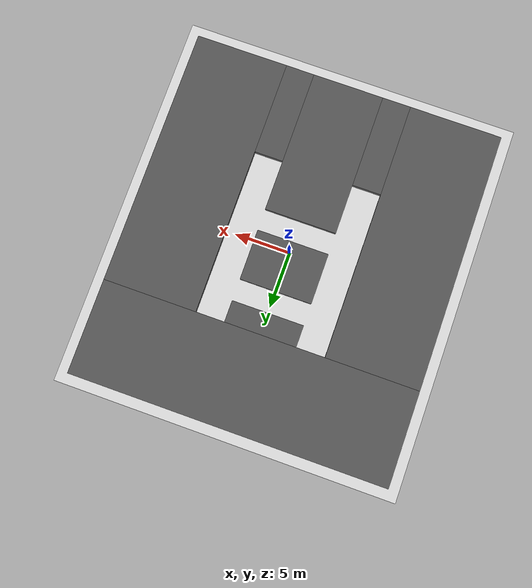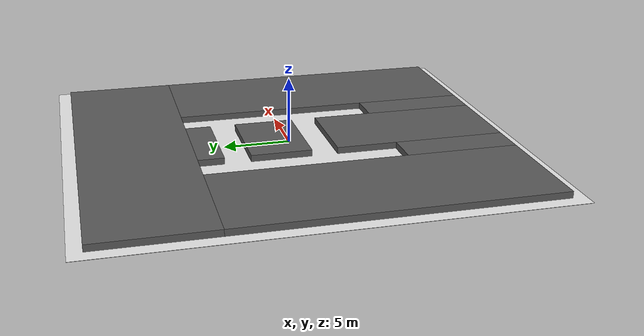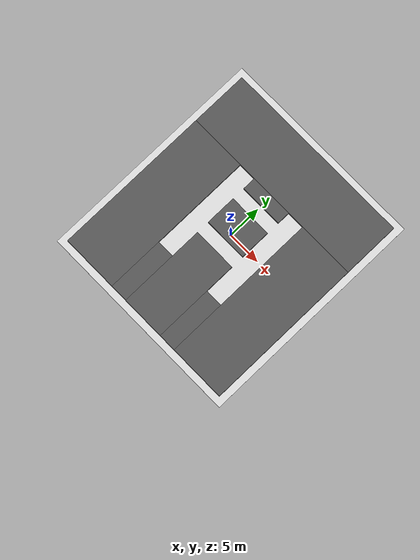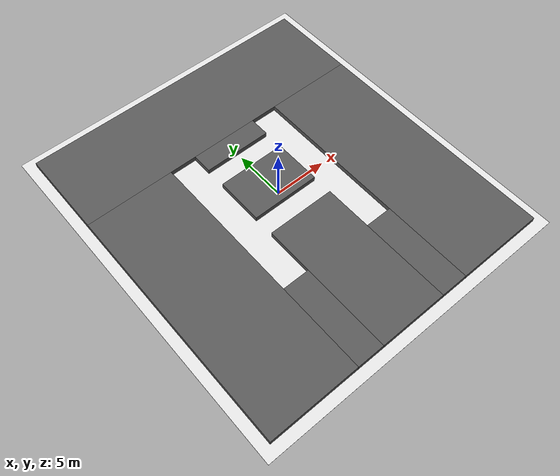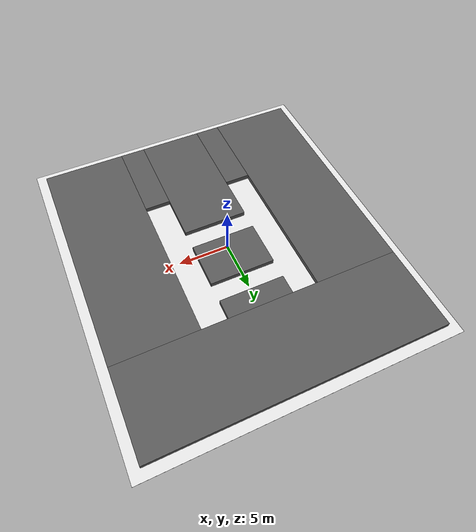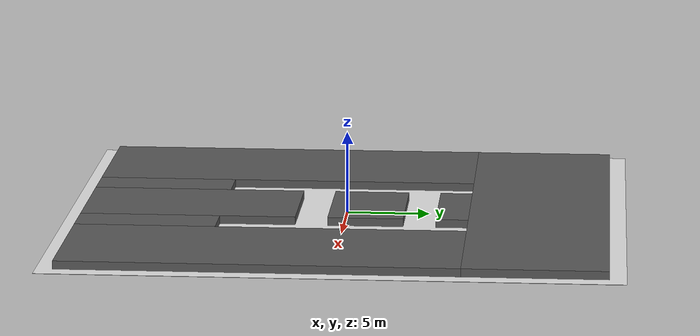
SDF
<?xml version="1.0"?>
<sdf version="1.9">
  <world name="test_map_l2">
    <plugin filename="ignition-gazebo-physics-system" name="ignition::gazebo::systems::Physics"/>
    <plugin filename="ignition-gazebo-user-commands-system" name="ignition::gazebo::systems::UserCommands"/>
    <plugin filename="ignition-gazebo-scene-broadcaster-system" name="ignition::gazebo::systems::SceneBroadcaster"/>
    <plugin filename="ignition-gazebo-sensors-system" name="ignition::gazebo::systems::Sensors">
      <render_engine>ogre2</render_engine>
    </plugin>
    <light name="sun" type="directional">
      <cast_shadows>true</cast_shadows>
      <pose>0 0 10 0 0 0</pose>
      <diffuse>0.8 0.8 0.8 1</diffuse>
      <specular>0.2 0.2 0.2 1</specular>
      <direction>-0.5 0.1 -0.9</direction>
    </light>
    <model name="ground_plane">
      <static>true</static>
      <link name="link">
        <collision name="collision">
          <geometry>
            <box><size>30.600000 33.850000 0.02</size></box>
          </geometry>
        </collision>
        <visual name="visual">
          <geometry>
            <box><size>30.600000 33.850000 0.02</size></box>
          </geometry>
          <material><ambient>0.9 0.9 0.9 1</ambient><diffuse>0.9 0.9 0.9 1</diffuse></material>
        </visual>
      </link>
    </model>
    <model name="rl_explore_obstacles">
      <static>true</static>
      <link name="wall_0000">
        <pose>0.000000 11.700000 0.250000 0 0 0</pose>
        <collision name="collision">
          <geometry>
            <box><size>28.600000 8.450000 0.500000</size></box>
          </geometry>
        </collision>
        <visual name="visual">
          <geometry>
            <box><size>28.600000 8.450000 0.500000</size></box>
          </geometry>
          <material><ambient>0.25 0.25 0.25 1</ambient><diffuse>0.35 0.35 0.35 1</diffuse></material>
        </visual>
      </link>
      <link name="wall_0001">
        <pose>-10.075000 -4.225000 0.250000 0 0 0</pose>
        <collision name="collision">
          <geometry>
            <box><size>8.450000 23.400000 0.500000</size></box>
          </geometry>
        </collision>
        <visual name="visual">
          <geometry>
            <box><size>8.450000 23.400000 0.500000</size></box>
          </geometry>
          <material><ambient>0.25 0.25 0.25 1</ambient><diffuse>0.35 0.35 0.35 1</diffuse></material>
        </visual>
      </link>
      <link name="wall_0002">
        <pose>0.000000 6.500000 0.250000 0 0 0</pose>
        <collision name="collision">
          <geometry>
            <box><size>6.500000 1.950000 0.500000</size></box>
          </geometry>
        </collision>
        <visual name="visual">
          <geometry>
            <box><size>6.500000 1.950000 0.500000</size></box>
          </geometry>
          <material><ambient>0.25 0.25 0.25 1</ambient><diffuse>0.35 0.35 0.35 1</diffuse></material>
        </visual>
      </link>
      <link name="wall_0003">
        <pose>10.075000 -4.225000 0.250000 0 0 0</pose>
        <collision name="collision">
          <geometry>
            <box><size>8.450000 23.400000 0.500000</size></box>
          </geometry>
        </collision>
        <visual name="visual">
          <geometry>
            <box><size>8.450000 23.400000 0.500000</size></box>
          </geometry>
          <material><ambient>0.25 0.25 0.25 1</ambient><diffuse>0.35 0.35 0.35 1</diffuse></material>
        </visual>
      </link>
      <link name="wall_0004">
        <pose>0.000000 1.300000 0.250000 0 0 0</pose>
        <collision name="collision">
          <geometry>
            <box><size>6.500000 4.550000 0.500000</size></box>
          </geometry>
        </collision>
        <visual name="visual">
          <geometry>
            <box><size>6.500000 4.550000 0.500000</size></box>
          </geometry>
          <material><ambient>0.25 0.25 0.25 1</ambient><diffuse>0.35 0.35 0.35 1</diffuse></material>
        </visual>
      </link>
      <link name="wall_0005">
        <pose>0.000000 -9.425000 0.250000 0 0 0</pose>
        <collision name="collision">
          <geometry>
            <box><size>6.500000 13.000000 0.500000</size></box>
          </geometry>
        </collision>
        <visual name="visual">
          <geometry>
            <box><size>6.500000 13.000000 0.500000</size></box>
          </geometry>
          <material><ambient>0.25 0.25 0.25 1</ambient><diffuse>0.35 0.35 0.35 1</diffuse></material>
        </visual>
      </link>
      <link name="wall_0006">
        <pose>-4.550000 -11.700000 0.250000 0 0 0</pose>
        <collision name="collision">
          <geometry>
            <box><size>2.600000 8.450000 0.500000</size></box>
          </geometry>
        </collision>
        <visual name="visual">
          <geometry>
            <box><size>2.600000 8.450000 0.500000</size></box>
          </geometry>
          <material><ambient>0.25 0.25 0.25 1</ambient><diffuse>0.35 0.35 0.35 1</diffuse></material>
        </visual>
      </link>
      <link name="wall_0007">
        <pose>4.550000 -11.700000 0.250000 0 0 0</pose>
        <collision name="collision">
          <geometry>
            <box><size>2.600000 8.450000 0.500000</size></box>
          </geometry>
        </collision>
        <visual name="visual">
          <geometry>
            <box><size>2.600000 8.450000 0.500000</size></box>
          </geometry>
          <material><ambient>0.25 0.25 0.25 1</ambient><diffuse>0.35 0.35 0.35 1</diffuse></material>
        </visual>
      </link>
    </model>
  </world>
</sdf>
